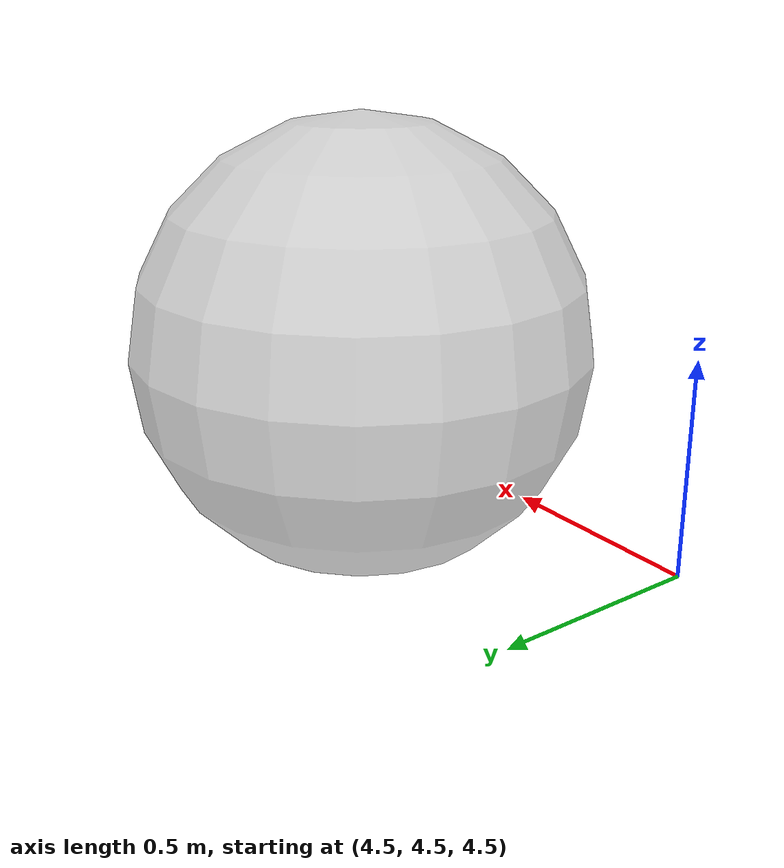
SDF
<?xml version="1.0" ?>
<sdf version="1.10">
  <world name="default">
    <!-- FIXED: Standardized physics for Gazebo Harmonic -->
    <physics name="1ms" type="ignored">
      <max_step_size>0.001</max_step_size>
      <real_time_factor>1.0</real_time_factor>
      <real_time_update_rate>1000</real_time_update_rate>
    </physics>

    <!-- ADDED: Mandatory Gazebo Harmonic system plugins -->
    <plugin filename="gz-sim-physics-system" name="gz::sim::systems::Physics"/>
    <plugin filename="gz-sim-user-commands-system" name="gz::sim::systems::UserCommands"/>
    <plugin filename="gz-sim-scene-broadcaster-system" name="gz::sim::systems::SceneBroadcaster"/>
    <plugin filename="gz-sim-sensors-system" name="gz::sim::systems::Sensors">
      <render_engine>ogre2</render_engine>
    </plugin>

    <include>
      <uri>model://sun</uri>
    </include>
    <include>
      <uri>model://ground_plane</uri>
    </include>

    <model name="sphere">
      <pose>5 5 5 0 0 0</pose>
      <static>true</static>
      <link name="link">
        <visual name="visual_04">
          <transparency>0.4</transparency>
          <geometry>
            <sphere>
              <radius>0.5</radius>
            </sphere>
          </geometry>
          <material>
            <script>
              <uri>file://media/materials/scripts/gazebo.material</uri>
              <n>Gazebo/Blue</n>
            </script>
          </material>
        </visual>
      </link>
    </model>

    <spherical_coordinates>
      <surface_model>EARTH_WGS84</surface_model>
      <latitude_deg>47.3667</latitude_deg>
      <longitude_deg>8.5500</longitude_deg>
      <elevation>500.0</elevation>
      <heading_deg>0</heading_deg>
    </spherical_coordinates>

    <!-- Gravity -->
    <gravity>0 0 -9.8</gravity>
  </world>
</sdf>
